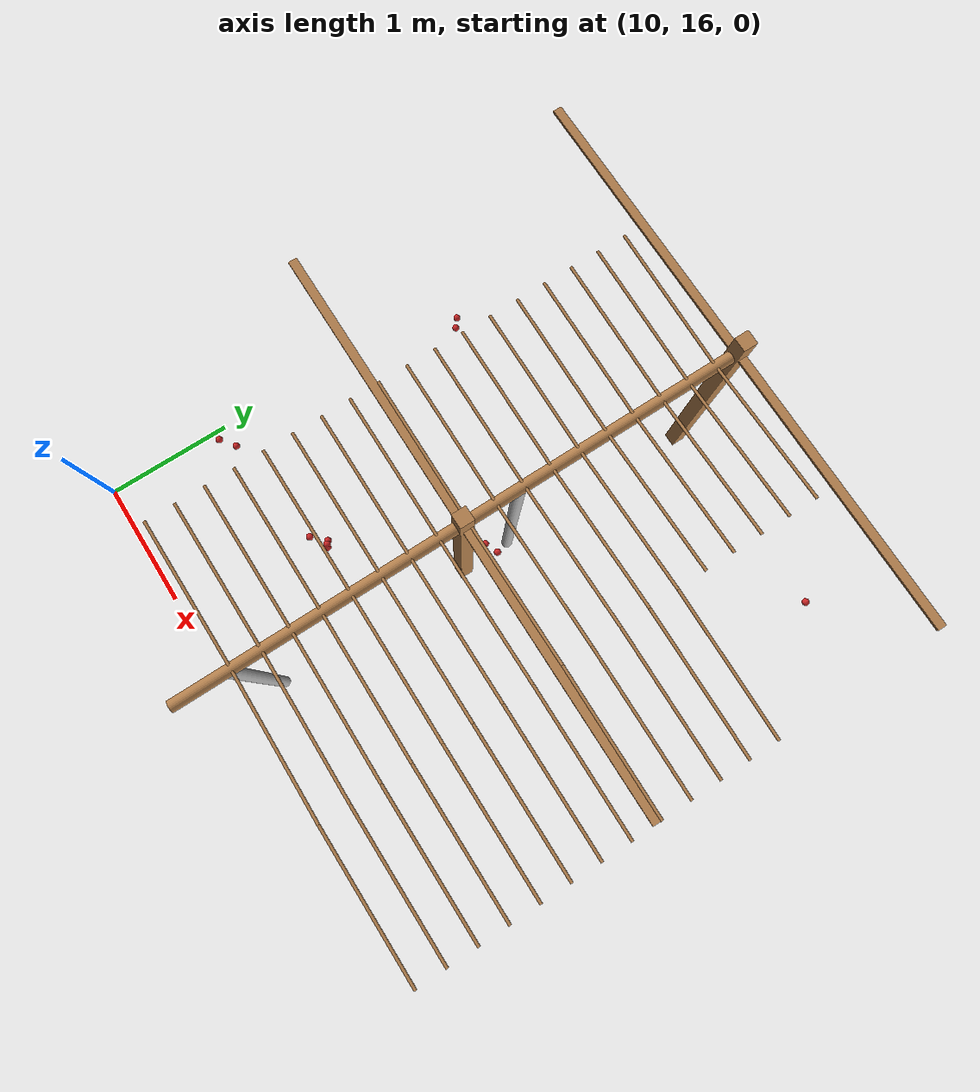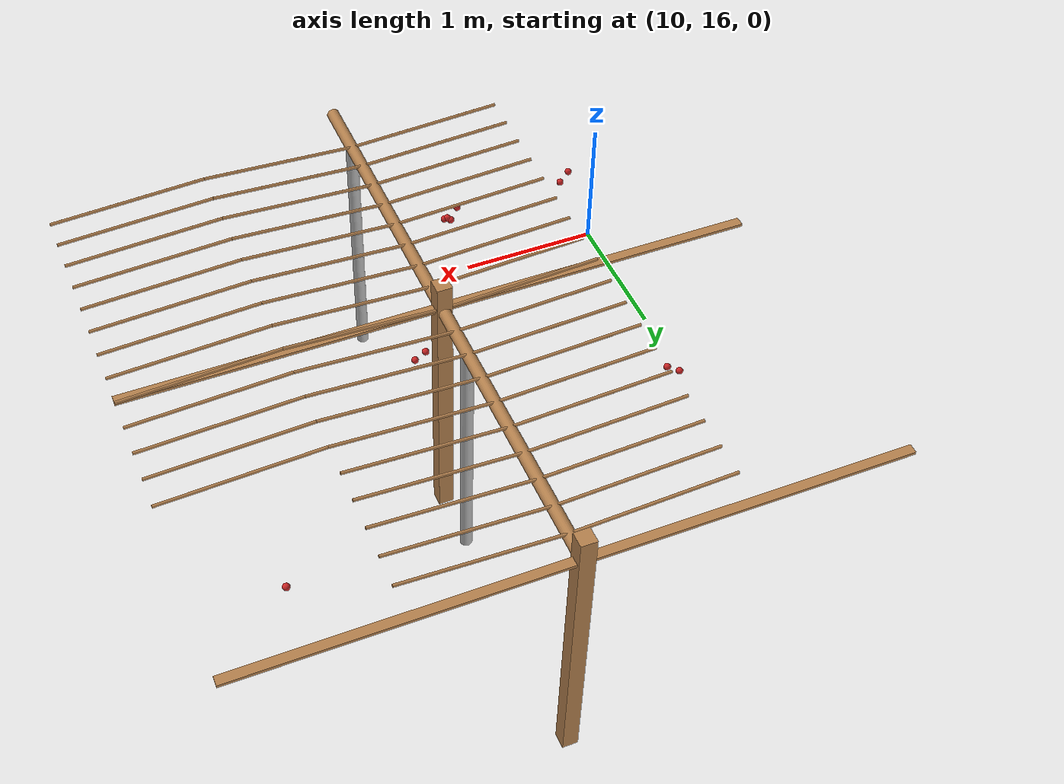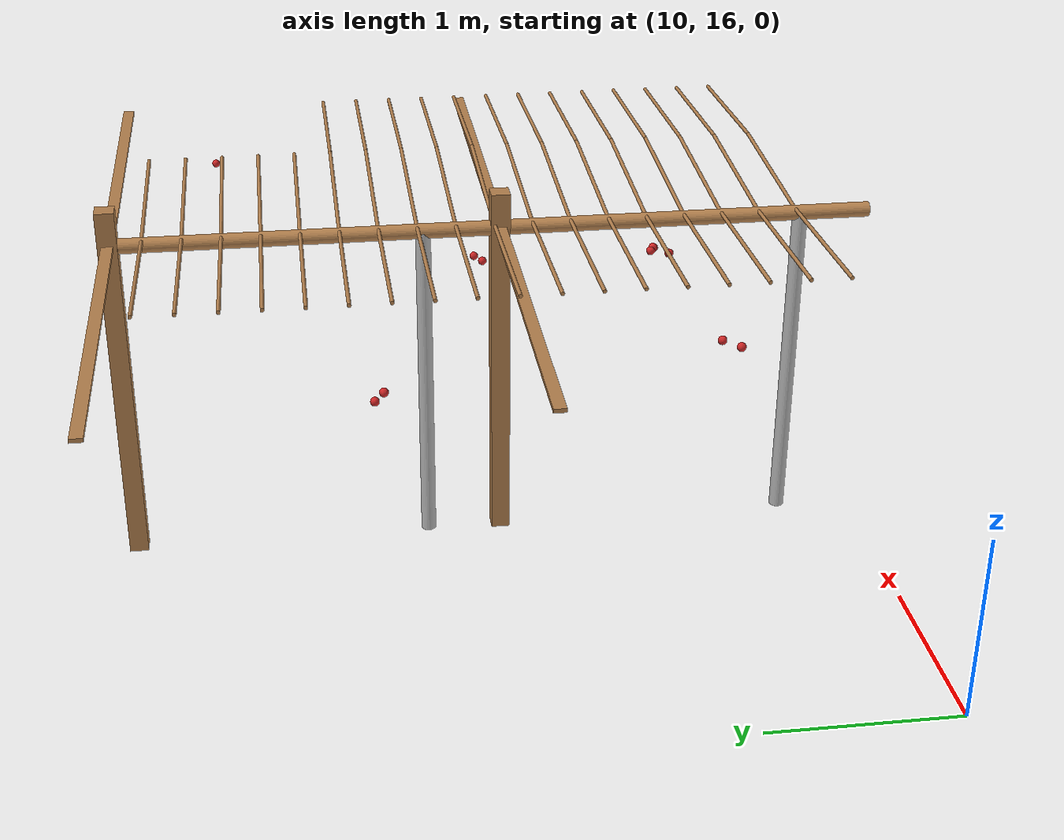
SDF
<sdf version="1.4">
 <model name="pergola">
  <include><name>post_75</name><pose>12.0 18.0 0 0 0 0</pose><uri>model://post</uri></include>
  <include><name>post_76</name><pose>12.0 20.0 0 0 0 0</pose><uri>model://post</uri></include>
  <link name="beam_64">
   <pose>11.0 18.0 1.81 0 0 0</pose>
   <collision name="collision"><geometry><box><size>2.0 0.06 0.02</size></box></geometry></collision>
   <visual name="visual">
    <geometry><box><size>2.0 0.06 0.02</size></box></geometry>
    <material><script><name>Gazebo/Wood</name></script></material>
   </visual>
   <inertial>
    <mass>5</mass>
    <inertia>
     <ixx>0.0016666666666666668</ixx>
     <ixy>0.0</ixy>
     <ixz>0.0</ixz>
     <iyy>1.6681666666666664</iyy>
     <iyz>0.0</iyz>
     <izz>1.6668333333333332</izz>
    </inertia>
   </inertial>
  </link>
  <link name="beam_65">
   <pose>11.0 20.0 1.81 0 0 0</pose>
   <collision name="collision"><geometry><box><size>2.0 0.06 0.02</size></box></geometry></collision>
   <visual name="visual">
    <geometry><box><size>2.0 0.06 0.02</size></box></geometry>
    <material><script><name>Gazebo/Wood</name></script></material>
   </visual>
   <inertial>
    <mass>5</mass>
    <inertia>
     <ixx>0.0016666666666666668</ixx>
     <ixy>0.0</ixy>
     <ixz>0.0</ixz>
     <iyy>1.6681666666666664</iyy>
     <iyz>0.0</iyz>
     <izz>1.6668333333333332</izz>
    </inertia>
   </inertial>
  </link>
  <link name="beam_75">
   <pose>13.0 18.0 1.81 0 0 0</pose>
   <collision name="collision"><geometry><box><size>2.0 0.06 0.02</size></box></geometry></collision>
   <visual name="visual">
    <geometry><box><size>2.0 0.06 0.02</size></box></geometry>
    <material><script><name>Gazebo/Wood</name></script></material>
   </visual>
   <inertial>
    <mass>5</mass>
    <inertia>
     <ixx>0.0016666666666666668</ixx>
     <ixy>0.0</ixy>
     <ixz>0.0</ixz>
     <iyy>1.6681666666666664</iyy>
     <iyz>0.0</iyz>
     <izz>1.6668333333333332</izz>
    </inertia>
   </inertial>
  </link>
  <link name="beam_76">
   <pose>13.0 20.0 1.81 0 0 0</pose>
   <collision name="collision"><geometry><box><size>2.0 0.06 0.02</size></box></geometry></collision>
   <visual name="visual">
    <geometry><box><size>2.0 0.06 0.02</size></box></geometry>
    <material><script><name>Gazebo/Wood</name></script></material>
   </visual>
   <inertial>
    <mass>5</mass>
    <inertia>
     <ixx>0.0016666666666666668</ixx>
     <ixy>0.0</ixy>
     <ixz>0.0</ixz>
     <iyy>1.6681666666666664</iyy>
     <iyz>0.0</iyz>
     <izz>1.6668333333333332</izz>
    </inertia>
   </inertial>
  </link>
  <include><name>tree_68</name><pose>12.0 16.4 0 0 0 0</pose><uri>model://tree_trunk</uri></include>
  <include><name>tree_69</name><pose>12.0 18.4 0 0 0 0</pose><uri>model://tree_trunk</uri></include>
  <link name="baseBranch_68">
   <pose>12.0 17.0 1.8 1.5707963267948966 0 0</pose>
   <collision name="collision">
    <geometry><cylinder><radius>0.04</radius><length>1.94</length></cylinder></geometry>
   </collision>
   <visual name="visual">
    <geometry><cylinder><radius>0.04</radius><length>1.94</length></cylinder></geometry>
    <material><script><name>Gazebo/WoodFloor</name></script></material>
   </visual>
   <inertial>
    <mass>10</mass>
    <inertia>
     <ixx>3.140333333333333</ixx>
     <ixy>0.0</ixy>
     <ixz>0.0</ixz>
     <iyy>3.140333333333333</iyy>
     <iyz>0.0</iyz>
     <izz>0.008</izz>
    </inertia>
   </inertial>
  </link>
  <link name="baseBranch_69">
   <pose>12.0 19.0 1.8 1.5707963267948966 0 0</pose>
   <collision name="collision">
    <geometry><cylinder><radius>0.04</radius><length>1.94</length></cylinder></geometry>
   </collision>
   <visual name="visual">
    <geometry><cylinder><radius>0.04</radius><length>1.94</length></cylinder></geometry>
    <material><script><name>Gazebo/WoodFloor</name></script></material>
   </visual>
   <inertial>
    <mass>10</mass>
    <inertia>
     <ixx>3.140333333333333</ixx>
     <ixy>0.0</ixy>
     <ixz>0.0</ixz>
     <iyy>3.140333333333333</iyy>
     <iyz>0.0</iyz>
     <izz>0.008</izz>
    </inertia>
   </inertial>
  </link>
  <link name="vine_1165">
   <pose>11.5 16.430000000000003 1.85 0 -1.5208379310729538 0</pose>
   <collision name="collision">
    <geometry><cylinder><radius>0.01</radius><length>1.0012492197250393</length></cylinder></geometry>
   </collision>
   <visual name="visual">
    <geometry><cylinder><radius>0.01</radius><length>1.0012492197250393</length></cylinder></geometry>
    <material><script><name>Gazebo/WoodFloor</name></script></material>
   </visual>
   <inertial>
    <mass>5</mass>
    <inertia>
     <ixx>0.41783333333333345</ixx>
     <ixy>0.0</ixy>
     <ixz>0.0</ixz>
     <iyy>0.41783333333333345</iyy>
     <iyz>0.0</iyz>
     <izz>0.00025</izz>
    </inertia>
   </inertial>
  </link>
  <link name="vine_1167">
   <pose>11.5 16.630000000000003 1.85 0 -1.5208379310729538 0</pose>
   <collision name="collision">
    <geometry><cylinder><radius>0.01</radius><length>1.0012492197250393</length></cylinder></geometry>
   </collision>
   <visual name="visual">
    <geometry><cylinder><radius>0.01</radius><length>1.0012492197250393</length></cylinder></geometry>
    <material><script><name>Gazebo/WoodFloor</name></script></material>
   </visual>
   <inertial>
    <mass>5</mass>
    <inertia>
     <ixx>0.41783333333333345</ixx>
     <ixy>0.0</ixy>
     <ixz>0.0</ixz>
     <iyy>0.41783333333333345</iyy>
     <iyz>0.0</iyz>
     <izz>0.00025</izz>
    </inertia>
   </inertial>
  </link>
  <link name="vine_1169">
   <pose>11.5 16.830000000000002 1.85 0 -1.5208379310729538 0</pose>
   <collision name="collision">
    <geometry><cylinder><radius>0.01</radius><length>1.0012492197250393</length></cylinder></geometry>
   </collision>
   <visual name="visual">
    <geometry><cylinder><radius>0.01</radius><length>1.0012492197250393</length></cylinder></geometry>
    <material><script><name>Gazebo/WoodFloor</name></script></material>
   </visual>
   <inertial>
    <mass>5</mass>
    <inertia>
     <ixx>0.41783333333333345</ixx>
     <ixy>0.0</ixy>
     <ixz>0.0</ixz>
     <iyy>0.41783333333333345</iyy>
     <iyz>0.0</iyz>
     <izz>0.00025</izz>
    </inertia>
   </inertial>
  </link>
  <link name="vine_1171">
   <pose>11.5 17.03 1.85 0 -1.5208379310729538 0</pose>
   <collision name="collision">
    <geometry><cylinder><radius>0.01</radius><length>1.0012492197250393</length></cylinder></geometry>
   </collision>
   <visual name="visual">
    <geometry><cylinder><radius>0.01</radius><length>1.0012492197250393</length></cylinder></geometry>
    <material><script><name>Gazebo/WoodFloor</name></script></material>
   </visual>
   <inertial>
    <mass>5</mass>
    <inertia>
     <ixx>0.41783333333333345</ixx>
     <ixy>0.0</ixy>
     <ixz>0.0</ixz>
     <iyy>0.41783333333333345</iyy>
     <iyz>0.0</iyz>
     <izz>0.00025</izz>
    </inertia>
   </inertial>
  </link>
  <link name="vine_1173">
   <pose>11.5 17.23 1.85 0 -1.5208379310729538 0</pose>
   <collision name="collision">
    <geometry><cylinder><radius>0.01</radius><length>1.0012492197250393</length></cylinder></geometry>
   </collision>
   <visual name="visual">
    <geometry><cylinder><radius>0.01</radius><length>1.0012492197250393</length></cylinder></geometry>
    <material><script><name>Gazebo/WoodFloor</name></script></material>
   </visual>
   <inertial>
    <mass>5</mass>
    <inertia>
     <ixx>0.41783333333333345</ixx>
     <ixy>0.0</ixy>
     <ixz>0.0</ixz>
     <iyy>0.41783333333333345</iyy>
     <iyz>0.0</iyz>
     <izz>0.00025</izz>
    </inertia>
   </inertial>
  </link>
  <link name="vine_1175">
   <pose>11.5 17.430000000000003 1.85 0 -1.5208379310729538 0</pose>
   <collision name="collision">
    <geometry><cylinder><radius>0.01</radius><length>1.0012492197250393</length></cylinder></geometry>
   </collision>
   <visual name="visual">
    <geometry><cylinder><radius>0.01</radius><length>1.0012492197250393</length></cylinder></geometry>
    <material><script><name>Gazebo/WoodFloor</name></script></material>
   </visual>
   <inertial>
    <mass>5</mass>
    <inertia>
     <ixx>0.41783333333333345</ixx>
     <ixy>0.0</ixy>
     <ixz>0.0</ixz>
     <iyy>0.41783333333333345</iyy>
     <iyz>0.0</iyz>
     <izz>0.00025</izz>
    </inertia>
   </inertial>
  </link>
  <link name="vine_1177">
   <pose>11.5 17.630000000000003 1.85 0 -1.5208379310729538 0</pose>
   <collision name="collision">
    <geometry><cylinder><radius>0.01</radius><length>1.0012492197250393</length></cylinder></geometry>
   </collision>
   <visual name="visual">
    <geometry><cylinder><radius>0.01</radius><length>1.0012492197250393</length></cylinder></geometry>
    <material><script><name>Gazebo/WoodFloor</name></script></material>
   </visual>
   <inertial>
    <mass>5</mass>
    <inertia>
     <ixx>0.41783333333333345</ixx>
     <ixy>0.0</ixy>
     <ixz>0.0</ixz>
     <iyy>0.41783333333333345</iyy>
     <iyz>0.0</iyz>
     <izz>0.00025</izz>
    </inertia>
   </inertial>
  </link>
  <link name="vine_1179">
   <pose>11.5 17.830000000000002 1.85 0 -1.5208379310729538 0</pose>
   <collision name="collision">
    <geometry><cylinder><radius>0.01</radius><length>1.0012492197250393</length></cylinder></geometry>
   </collision>
   <visual name="visual">
    <geometry><cylinder><radius>0.01</radius><length>1.0012492197250393</length></cylinder></geometry>
    <material><script><name>Gazebo/WoodFloor</name></script></material>
   </visual>
   <inertial>
    <mass>5</mass>
    <inertia>
     <ixx>0.41783333333333345</ixx>
     <ixy>0.0</ixy>
     <ixz>0.0</ixz>
     <iyy>0.41783333333333345</iyy>
     <iyz>0.0</iyz>
     <izz>0.00025</izz>
    </inertia>
   </inertial>
  </link>
  <link name="vine_1181">
   <pose>11.5 18.03 1.85 0 -1.5208379310729538 0</pose>
   <collision name="collision">
    <geometry><cylinder><radius>0.01</radius><length>1.0012492197250393</length></cylinder></geometry>
   </collision>
   <visual name="visual">
    <geometry><cylinder><radius>0.01</radius><length>1.0012492197250393</length></cylinder></geometry>
    <material><script><name>Gazebo/WoodFloor</name></script></material>
   </visual>
   <inertial>
    <mass>5</mass>
    <inertia>
     <ixx>0.41783333333333345</ixx>
     <ixy>0.0</ixy>
     <ixz>0.0</ixz>
     <iyy>0.41783333333333345</iyy>
     <iyz>0.0</iyz>
     <izz>0.00025</izz>
    </inertia>
   </inertial>
  </link>
  <link name="vine_1183">
   <pose>11.5 18.23 1.85 0 -1.5208379310729538 0</pose>
   <collision name="collision">
    <geometry><cylinder><radius>0.01</radius><length>1.0012492197250393</length></cylinder></geometry>
   </collision>
   <visual name="visual">
    <geometry><cylinder><radius>0.01</radius><length>1.0012492197250393</length></cylinder></geometry>
    <material><script><name>Gazebo/WoodFloor</name></script></material>
   </visual>
   <inertial>
    <mass>5</mass>
    <inertia>
     <ixx>0.41783333333333345</ixx>
     <ixy>0.0</ixy>
     <ixz>0.0</ixz>
     <iyy>0.41783333333333345</iyy>
     <iyz>0.0</iyz>
     <izz>0.00025</izz>
    </inertia>
   </inertial>
  </link>
  <link name="vine_1185">
   <pose>11.5 18.430000000000003 1.85 0 -1.5208379310729538 0</pose>
   <collision name="collision">
    <geometry><cylinder><radius>0.01</radius><length>1.0012492197250393</length></cylinder></geometry>
   </collision>
   <visual name="visual">
    <geometry><cylinder><radius>0.01</radius><length>1.0012492197250393</length></cylinder></geometry>
    <material><script><name>Gazebo/WoodFloor</name></script></material>
   </visual>
   <inertial>
    <mass>5</mass>
    <inertia>
     <ixx>0.41783333333333345</ixx>
     <ixy>0.0</ixy>
     <ixz>0.0</ixz>
     <iyy>0.41783333333333345</iyy>
     <iyz>0.0</iyz>
     <izz>0.00025</izz>
    </inertia>
   </inertial>
  </link>
  <link name="vine_1187">
   <pose>11.5 18.630000000000003 1.85 0 -1.5208379310729538 0</pose>
   <collision name="collision">
    <geometry><cylinder><radius>0.01</radius><length>1.0012492197250393</length></cylinder></geometry>
   </collision>
   <visual name="visual">
    <geometry><cylinder><radius>0.01</radius><length>1.0012492197250393</length></cylinder></geometry>
    <material><script><name>Gazebo/WoodFloor</name></script></material>
   </visual>
   <inertial>
    <mass>5</mass>
    <inertia>
     <ixx>0.41783333333333345</ixx>
     <ixy>0.0</ixy>
     <ixz>0.0</ixz>
     <iyy>0.41783333333333345</iyy>
     <iyz>0.0</iyz>
     <izz>0.00025</izz>
    </inertia>
   </inertial>
  </link>
  <link name="vine_1189">
   <pose>11.5 18.830000000000002 1.85 0 -1.5208379310729538 0</pose>
   <collision name="collision">
    <geometry><cylinder><radius>0.01</radius><length>1.0012492197250393</length></cylinder></geometry>
   </collision>
   <visual name="visual">
    <geometry><cylinder><radius>0.01</radius><length>1.0012492197250393</length></cylinder></geometry>
    <material><script><name>Gazebo/WoodFloor</name></script></material>
   </visual>
   <inertial>
    <mass>5</mass>
    <inertia>
     <ixx>0.41783333333333345</ixx>
     <ixy>0.0</ixy>
     <ixz>0.0</ixz>
     <iyy>0.41783333333333345</iyy>
     <iyz>0.0</iyz>
     <izz>0.00025</izz>
    </inertia>
   </inertial>
  </link>
  <link name="vine_1191">
   <pose>11.5 19.03 1.85 0 -1.5208379310729538 0</pose>
   <collision name="collision">
    <geometry><cylinder><radius>0.01</radius><length>1.0012492197250393</length></cylinder></geometry>
   </collision>
   <visual name="visual">
    <geometry><cylinder><radius>0.01</radius><length>1.0012492197250393</length></cylinder></geometry>
    <material><script><name>Gazebo/WoodFloor</name></script></material>
   </visual>
   <inertial>
    <mass>5</mass>
    <inertia>
     <ixx>0.41783333333333345</ixx>
     <ixy>0.0</ixy>
     <ixz>0.0</ixz>
     <iyy>0.41783333333333345</iyy>
     <iyz>0.0</iyz>
     <izz>0.00025</izz>
    </inertia>
   </inertial>
  </link>
  <link name="vine_1193">
   <pose>11.5 19.230000000000004 1.85 0 -1.5208379310729538 0</pose>
   <collision name="collision">
    <geometry><cylinder><radius>0.01</radius><length>1.0012492197250393</length></cylinder></geometry>
   </collision>
   <visual name="visual">
    <geometry><cylinder><radius>0.01</radius><length>1.0012492197250393</length></cylinder></geometry>
    <material><script><name>Gazebo/WoodFloor</name></script></material>
   </visual>
   <inertial>
    <mass>5</mass>
    <inertia>
     <ixx>0.41783333333333345</ixx>
     <ixy>0.0</ixy>
     <ixz>0.0</ixz>
     <iyy>0.41783333333333345</iyy>
     <iyz>0.0</iyz>
     <izz>0.00025</izz>
    </inertia>
   </inertial>
  </link>
  <link name="vine_1195">
   <pose>11.5 19.430000000000003 1.85 0 -1.5208379310729538 0</pose>
   <collision name="collision">
    <geometry><cylinder><radius>0.01</radius><length>1.0012492197250393</length></cylinder></geometry>
   </collision>
   <visual name="visual">
    <geometry><cylinder><radius>0.01</radius><length>1.0012492197250393</length></cylinder></geometry>
    <material><script><name>Gazebo/WoodFloor</name></script></material>
   </visual>
   <inertial>
    <mass>5</mass>
    <inertia>
     <ixx>0.41783333333333345</ixx>
     <ixy>0.0</ixy>
     <ixz>0.0</ixz>
     <iyy>0.41783333333333345</iyy>
     <iyz>0.0</iyz>
     <izz>0.00025</izz>
    </inertia>
   </inertial>
  </link>
  <link name="vine_1197">
   <pose>11.5 19.630000000000003 1.85 0 -1.5208379310729538 0</pose>
   <collision name="collision">
    <geometry><cylinder><radius>0.01</radius><length>1.0012492197250393</length></cylinder></geometry>
   </collision>
   <visual name="visual">
    <geometry><cylinder><radius>0.01</radius><length>1.0012492197250393</length></cylinder></geometry>
    <material><script><name>Gazebo/WoodFloor</name></script></material>
   </visual>
   <inertial>
    <mass>5</mass>
    <inertia>
     <ixx>0.41783333333333345</ixx>
     <ixy>0.0</ixy>
     <ixz>0.0</ixz>
     <iyy>0.41783333333333345</iyy>
     <iyz>0.0</iyz>
     <izz>0.00025</izz>
    </inertia>
   </inertial>
  </link>
  <link name="vine_1199">
   <pose>11.5 19.830000000000002 1.85 0 -1.5208379310729538 0</pose>
   <collision name="collision">
    <geometry><cylinder><radius>0.01</radius><length>1.0012492197250393</length></cylinder></geometry>
   </collision>
   <visual name="visual">
    <geometry><cylinder><radius>0.01</radius><length>1.0012492197250393</length></cylinder></geometry>
    <material><script><name>Gazebo/WoodFloor</name></script></material>
   </visual>
   <inertial>
    <mass>5</mass>
    <inertia>
     <ixx>0.41783333333333345</ixx>
     <ixy>0.0</ixy>
     <ixz>0.0</ixz>
     <iyy>0.41783333333333345</iyy>
     <iyz>0.0</iyz>
     <izz>0.00025</izz>
    </inertia>
   </inertial>
  </link>
  <link name="vine_1364">
   <pose>12.5 16.430000000000003 1.85 0 1.5208379310729538 0</pose>
   <collision name="collision">
    <geometry><cylinder><radius>0.01</radius><length>1.0012492197250393</length></cylinder></geometry>
   </collision>
   <visual name="visual">
    <geometry><cylinder><radius>0.01</radius><length>1.0012492197250393</length></cylinder></geometry>
    <material><script><name>Gazebo/WoodFloor</name></script></material>
   </visual>
   <inertial>
    <mass>5</mass>
    <inertia>
     <ixx>0.41783333333333345</ixx>
     <ixy>0.0</ixy>
     <ixz>0.0</ixz>
     <iyy>0.41783333333333345</iyy>
     <iyz>0.0</iyz>
     <izz>0.00025</izz>
    </inertia>
   </inertial>
  </link>
  <link name="vine_1365">
   <pose>13.5 16.430000000000003 1.85 0 -1.5208379310729538 0</pose>
   <collision name="collision">
    <geometry><cylinder><radius>0.01</radius><length>1.0012492197250393</length></cylinder></geometry>
   </collision>
   <visual name="visual">
    <geometry><cylinder><radius>0.01</radius><length>1.0012492197250393</length></cylinder></geometry>
    <material><script><name>Gazebo/WoodFloor</name></script></material>
   </visual>
   <inertial>
    <mass>5</mass>
    <inertia>
     <ixx>0.41783333333333345</ixx>
     <ixy>0.0</ixy>
     <ixz>0.0</ixz>
     <iyy>0.41783333333333345</iyy>
     <iyz>0.0</iyz>
     <izz>0.00025</izz>
    </inertia>
   </inertial>
  </link>
  <link name="vine_1366">
   <pose>12.5 16.630000000000003 1.85 0 1.5208379310729538 0</pose>
   <collision name="collision">
    <geometry><cylinder><radius>0.01</radius><length>1.0012492197250393</length></cylinder></geometry>
   </collision>
   <visual name="visual">
    <geometry><cylinder><radius>0.01</radius><length>1.0012492197250393</length></cylinder></geometry>
    <material><script><name>Gazebo/WoodFloor</name></script></material>
   </visual>
   <inertial>
    <mass>5</mass>
    <inertia>
     <ixx>0.41783333333333345</ixx>
     <ixy>0.0</ixy>
     <ixz>0.0</ixz>
     <iyy>0.41783333333333345</iyy>
     <iyz>0.0</iyz>
     <izz>0.00025</izz>
    </inertia>
   </inertial>
  </link>
  <link name="vine_1367">
   <pose>13.5 16.630000000000003 1.85 0 -1.5208379310729538 0</pose>
   <collision name="collision">
    <geometry><cylinder><radius>0.01</radius><length>1.0012492197250393</length></cylinder></geometry>
   </collision>
   <visual name="visual">
    <geometry><cylinder><radius>0.01</radius><length>1.0012492197250393</length></cylinder></geometry>
    <material><script><name>Gazebo/WoodFloor</name></script></material>
   </visual>
   <inertial>
    <mass>5</mass>
    <inertia>
     <ixx>0.41783333333333345</ixx>
     <ixy>0.0</ixy>
     <ixz>0.0</ixz>
     <iyy>0.41783333333333345</iyy>
     <iyz>0.0</iyz>
     <izz>0.00025</izz>
    </inertia>
   </inertial>
  </link>
  <link name="vine_1368">
   <pose>12.5 16.830000000000002 1.85 0 1.5208379310729538 0</pose>
   <collision name="collision">
    <geometry><cylinder><radius>0.01</radius><length>1.0012492197250393</length></cylinder></geometry>
   </collision>
   <visual name="visual">
    <geometry><cylinder><radius>0.01</radius><length>1.0012492197250393</length></cylinder></geometry>
    <material><script><name>Gazebo/WoodFloor</name></script></material>
   </visual>
   <inertial>
    <mass>5</mass>
    <inertia>
     <ixx>0.41783333333333345</ixx>
     <ixy>0.0</ixy>
     <ixz>0.0</ixz>
     <iyy>0.41783333333333345</iyy>
     <iyz>0.0</iyz>
     <izz>0.00025</izz>
    </inertia>
   </inertial>
  </link>
  <link name="vine_1369">
   <pose>13.5 16.830000000000002 1.85 0 -1.5208379310729538 0</pose>
   <collision name="collision">
    <geometry><cylinder><radius>0.01</radius><length>1.0012492197250393</length></cylinder></geometry>
   </collision>
   <visual name="visual">
    <geometry><cylinder><radius>0.01</radius><length>1.0012492197250393</length></cylinder></geometry>
    <material><script><name>Gazebo/WoodFloor</name></script></material>
   </visual>
   <inertial>
    <mass>5</mass>
    <inertia>
     <ixx>0.41783333333333345</ixx>
     <ixy>0.0</ixy>
     <ixz>0.0</ixz>
     <iyy>0.41783333333333345</iyy>
     <iyz>0.0</iyz>
     <izz>0.00025</izz>
    </inertia>
   </inertial>
  </link>
  <link name="vine_1370">
   <pose>12.5 17.03 1.85 0 1.5208379310729538 0</pose>
   <collision name="collision">
    <geometry><cylinder><radius>0.01</radius><length>1.0012492197250393</length></cylinder></geometry>
   </collision>
   <visual name="visual">
    <geometry><cylinder><radius>0.01</radius><length>1.0012492197250393</length></cylinder></geometry>
    <material><script><name>Gazebo/WoodFloor</name></script></material>
   </visual>
   <inertial>
    <mass>5</mass>
    <inertia>
     <ixx>0.41783333333333345</ixx>
     <ixy>0.0</ixy>
     <ixz>0.0</ixz>
     <iyy>0.41783333333333345</iyy>
     <iyz>0.0</iyz>
     <izz>0.00025</izz>
    </inertia>
   </inertial>
  </link>
  <link name="vine_1371">
   <pose>13.5 17.03 1.85 0 -1.5208379310729538 0</pose>
   <collision name="collision">
    <geometry><cylinder><radius>0.01</radius><length>1.0012492197250393</length></cylinder></geometry>
   </collision>
   <visual name="visual">
    <geometry><cylinder><radius>0.01</radius><length>1.0012492197250393</length></cylinder></geometry>
    <material><script><name>Gazebo/WoodFloor</name></script></material>
   </visual>
   <inertial>
    <mass>5</mass>
    <inertia>
     <ixx>0.41783333333333345</ixx>
     <ixy>0.0</ixy>
     <ixz>0.0</ixz>
     <iyy>0.41783333333333345</iyy>
     <iyz>0.0</iyz>
     <izz>0.00025</izz>
    </inertia>
   </inertial>
  </link>
  <link name="vine_1372">
   <pose>12.5 17.23 1.85 0 1.5208379310729538 0</pose>
   <collision name="collision">
    <geometry><cylinder><radius>0.01</radius><length>1.0012492197250393</length></cylinder></geometry>
   </collision>
   <visual name="visual">
    <geometry><cylinder><radius>0.01</radius><length>1.0012492197250393</length></cylinder></geometry>
    <material><script><name>Gazebo/WoodFloor</name></script></material>
   </visual>
   <inertial>
    <mass>5</mass>
    <inertia>
     <ixx>0.41783333333333345</ixx>
     <ixy>0.0</ixy>
     <ixz>0.0</ixz>
     <iyy>0.41783333333333345</iyy>
     <iyz>0.0</iyz>
     <izz>0.00025</izz>
    </inertia>
   </inertial>
  </link>
  <link name="vine_1373">
   <pose>13.5 17.23 1.85 0 -1.5208379310729538 0</pose>
   <collision name="collision">
    <geometry><cylinder><radius>0.01</radius><length>1.0012492197250393</length></cylinder></geometry>
   </collision>
   <visual name="visual">
    <geometry><cylinder><radius>0.01</radius><length>1.0012492197250393</length></cylinder></geometry>
    <material><script><name>Gazebo/WoodFloor</name></script></material>
   </visual>
   <inertial>
    <mass>5</mass>
    <inertia>
     <ixx>0.41783333333333345</ixx>
     <ixy>0.0</ixy>
     <ixz>0.0</ixz>
     <iyy>0.41783333333333345</iyy>
     <iyz>0.0</iyz>
     <izz>0.00025</izz>
    </inertia>
   </inertial>
  </link>
  <link name="vine_1374">
   <pose>12.5 17.430000000000003 1.85 0 1.5208379310729538 0</pose>
   <collision name="collision">
    <geometry><cylinder><radius>0.01</radius><length>1.0012492197250393</length></cylinder></geometry>
   </collision>
   <visual name="visual">
    <geometry><cylinder><radius>0.01</radius><length>1.0012492197250393</length></cylinder></geometry>
    <material><script><name>Gazebo/WoodFloor</name></script></material>
   </visual>
   <inertial>
    <mass>5</mass>
    <inertia>
     <ixx>0.41783333333333345</ixx>
     <ixy>0.0</ixy>
     <ixz>0.0</ixz>
     <iyy>0.41783333333333345</iyy>
     <iyz>0.0</iyz>
     <izz>0.00025</izz>
    </inertia>
   </inertial>
  </link>
  <link name="vine_1375">
   <pose>13.5 17.430000000000003 1.85 0 -1.5208379310729538 0</pose>
   <collision name="collision">
    <geometry><cylinder><radius>0.01</radius><length>1.0012492197250393</length></cylinder></geometry>
   </collision>
   <visual name="visual">
    <geometry><cylinder><radius>0.01</radius><length>1.0012492197250393</length></cylinder></geometry>
    <material><script><name>Gazebo/WoodFloor</name></script></material>
   </visual>
   <inertial>
    <mass>5</mass>
    <inertia>
     <ixx>0.41783333333333345</ixx>
     <ixy>0.0</ixy>
     <ixz>0.0</ixz>
     <iyy>0.41783333333333345</iyy>
     <iyz>0.0</iyz>
     <izz>0.00025</izz>
    </inertia>
   </inertial>
  </link>
  <link name="vine_1376">
   <pose>12.5 17.630000000000003 1.85 0 1.5208379310729538 0</pose>
   <collision name="collision">
    <geometry><cylinder><radius>0.01</radius><length>1.0012492197250393</length></cylinder></geometry>
   </collision>
   <visual name="visual">
    <geometry><cylinder><radius>0.01</radius><length>1.0012492197250393</length></cylinder></geometry>
    <material><script><name>Gazebo/WoodFloor</name></script></material>
   </visual>
   <inertial>
    <mass>5</mass>
    <inertia>
     <ixx>0.41783333333333345</ixx>
     <ixy>0.0</ixy>
     <ixz>0.0</ixz>
     <iyy>0.41783333333333345</iyy>
     <iyz>0.0</iyz>
     <izz>0.00025</izz>
    </inertia>
   </inertial>
  </link>
  <link name="vine_1377">
   <pose>13.5 17.630000000000003 1.85 0 -1.5208379310729538 0</pose>
   <collision name="collision">
    <geometry><cylinder><radius>0.01</radius><length>1.0012492197250393</length></cylinder></geometry>
   </collision>
   <visual name="visual">
    <geometry><cylinder><radius>0.01</radius><length>1.0012492197250393</length></cylinder></geometry>
    <material><script><name>Gazebo/WoodFloor</name></script></material>
   </visual>
   <inertial>
    <mass>5</mass>
    <inertia>
     <ixx>0.41783333333333345</ixx>
     <ixy>0.0</ixy>
     <ixz>0.0</ixz>
     <iyy>0.41783333333333345</iyy>
     <iyz>0.0</iyz>
     <izz>0.00025</izz>
    </inertia>
   </inertial>
  </link>
  <link name="vine_1378">
   <pose>12.5 17.830000000000002 1.85 0 1.5208379310729538 0</pose>
   <collision name="collision">
    <geometry><cylinder><radius>0.01</radius><length>1.0012492197250393</length></cylinder></geometry>
   </collision>
   <visual name="visual">
    <geometry><cylinder><radius>0.01</radius><length>1.0012492197250393</length></cylinder></geometry>
    <material><script><name>Gazebo/WoodFloor</name></script></material>
   </visual>
   <inertial>
    <mass>5</mass>
    <inertia>
     <ixx>0.41783333333333345</ixx>
     <ixy>0.0</ixy>
     <ixz>0.0</ixz>
     <iyy>0.41783333333333345</iyy>
     <iyz>0.0</iyz>
     <izz>0.00025</izz>
    </inertia>
   </inertial>
  </link>
  <link name="vine_1379">
   <pose>13.5 17.830000000000002 1.85 0 -1.5208379310729538 0</pose>
   <collision name="collision">
    <geometry><cylinder><radius>0.01</radius><length>1.0012492197250393</length></cylinder></geometry>
   </collision>
   <visual name="visual">
    <geometry><cylinder><radius>0.01</radius><length>1.0012492197250393</length></cylinder></geometry>
    <material><script><name>Gazebo/WoodFloor</name></script></material>
   </visual>
   <inertial>
    <mass>5</mass>
    <inertia>
     <ixx>0.41783333333333345</ixx>
     <ixy>0.0</ixy>
     <ixz>0.0</ixz>
     <iyy>0.41783333333333345</iyy>
     <iyz>0.0</iyz>
     <izz>0.00025</izz>
    </inertia>
   </inertial>
  </link>
  <link name="vine_1380">
   <pose>12.5 18.03 1.85 0 1.5208379310729538 0</pose>
   <collision name="collision">
    <geometry><cylinder><radius>0.01</radius><length>1.0012492197250393</length></cylinder></geometry>
   </collision>
   <visual name="visual">
    <geometry><cylinder><radius>0.01</radius><length>1.0012492197250393</length></cylinder></geometry>
    <material><script><name>Gazebo/WoodFloor</name></script></material>
   </visual>
   <inertial>
    <mass>5</mass>
    <inertia>
     <ixx>0.41783333333333345</ixx>
     <ixy>0.0</ixy>
     <ixz>0.0</ixz>
     <iyy>0.41783333333333345</iyy>
     <iyz>0.0</iyz>
     <izz>0.00025</izz>
    </inertia>
   </inertial>
  </link>
  <link name="vine_1381">
   <pose>13.5 18.03 1.85 0 -1.5208379310729538 0</pose>
   <collision name="collision">
    <geometry><cylinder><radius>0.01</radius><length>1.0012492197250393</length></cylinder></geometry>
   </collision>
   <visual name="visual">
    <geometry><cylinder><radius>0.01</radius><length>1.0012492197250393</length></cylinder></geometry>
    <material><script><name>Gazebo/WoodFloor</name></script></material>
   </visual>
   <inertial>
    <mass>5</mass>
    <inertia>
     <ixx>0.41783333333333345</ixx>
     <ixy>0.0</ixy>
     <ixz>0.0</ixz>
     <iyy>0.41783333333333345</iyy>
     <iyz>0.0</iyz>
     <izz>0.00025</izz>
    </inertia>
   </inertial>
  </link>
  <link name="vine_1382">
   <pose>12.5 18.23 1.85 0 1.5208379310729538 0</pose>
   <collision name="collision">
    <geometry><cylinder><radius>0.01</radius><length>1.0012492197250393</length></cylinder></geometry>
   </collision>
   <visual name="visual">
    <geometry><cylinder><radius>0.01</radius><length>1.0012492197250393</length></cylinder></geometry>
    <material><script><name>Gazebo/WoodFloor</name></script></material>
   </visual>
   <inertial>
    <mass>5</mass>
    <inertia>
     <ixx>0.41783333333333345</ixx>
     <ixy>0.0</ixy>
     <ixz>0.0</ixz>
     <iyy>0.41783333333333345</iyy>
     <iyz>0.0</iyz>
     <izz>0.00025</izz>
    </inertia>
   </inertial>
  </link>
  <link name="vine_1383">
   <pose>13.5 18.23 1.85 0 -1.5208379310729538 0</pose>
   <collision name="collision">
    <geometry><cylinder><radius>0.01</radius><length>1.0012492197250393</length></cylinder></geometry>
   </collision>
   <visual name="visual">
    <geometry><cylinder><radius>0.01</radius><length>1.0012492197250393</length></cylinder></geometry>
    <material><script><name>Gazebo/WoodFloor</name></script></material>
   </visual>
   <inertial>
    <mass>5</mass>
    <inertia>
     <ixx>0.41783333333333345</ixx>
     <ixy>0.0</ixy>
     <ixz>0.0</ixz>
     <iyy>0.41783333333333345</iyy>
     <iyz>0.0</iyz>
     <izz>0.00025</izz>
    </inertia>
   </inertial>
  </link>
  <link name="vine_1384">
   <pose>12.5 18.430000000000003 1.85 0 1.5208379310729538 0</pose>
   <collision name="collision">
    <geometry><cylinder><radius>0.01</radius><length>1.0012492197250393</length></cylinder></geometry>
   </collision>
   <visual name="visual">
    <geometry><cylinder><radius>0.01</radius><length>1.0012492197250393</length></cylinder></geometry>
    <material><script><name>Gazebo/WoodFloor</name></script></material>
   </visual>
   <inertial>
    <mass>5</mass>
    <inertia>
     <ixx>0.41783333333333345</ixx>
     <ixy>0.0</ixy>
     <ixz>0.0</ixz>
     <iyy>0.41783333333333345</iyy>
     <iyz>0.0</iyz>
     <izz>0.00025</izz>
    </inertia>
   </inertial>
  </link>
  <link name="vine_1385">
   <pose>13.5 18.430000000000003 1.85 0 -1.5208379310729538 0</pose>
   <collision name="collision">
    <geometry><cylinder><radius>0.01</radius><length>1.0012492197250393</length></cylinder></geometry>
   </collision>
   <visual name="visual">
    <geometry><cylinder><radius>0.01</radius><length>1.0012492197250393</length></cylinder></geometry>
    <material><script><name>Gazebo/WoodFloor</name></script></material>
   </visual>
   <inertial>
    <mass>5</mass>
    <inertia>
     <ixx>0.41783333333333345</ixx>
     <ixy>0.0</ixy>
     <ixz>0.0</ixz>
     <iyy>0.41783333333333345</iyy>
     <iyz>0.0</iyz>
     <izz>0.00025</izz>
    </inertia>
   </inertial>
  </link>
  <link name="vine_1386">
   <pose>12.5 18.630000000000003 1.85 0 1.5208379310729538 0</pose>
   <collision name="collision">
    <geometry><cylinder><radius>0.01</radius><length>1.0012492197250393</length></cylinder></geometry>
   </collision>
   <visual name="visual">
    <geometry><cylinder><radius>0.01</radius><length>1.0012492197250393</length></cylinder></geometry>
    <material><script><name>Gazebo/WoodFloor</name></script></material>
   </visual>
   <inertial>
    <mass>5</mass>
    <inertia>
     <ixx>0.41783333333333345</ixx>
     <ixy>0.0</ixy>
     <ixz>0.0</ixz>
     <iyy>0.41783333333333345</iyy>
     <iyz>0.0</iyz>
     <izz>0.00025</izz>
    </inertia>
   </inertial>
  </link>
  <link name="vine_1387">
   <pose>13.5 18.630000000000003 1.85 0 -1.5208379310729538 0</pose>
   <collision name="collision">
    <geometry><cylinder><radius>0.01</radius><length>1.0012492197250393</length></cylinder></geometry>
   </collision>
   <visual name="visual">
    <geometry><cylinder><radius>0.01</radius><length>1.0012492197250393</length></cylinder></geometry>
    <material><script><name>Gazebo/WoodFloor</name></script></material>
   </visual>
   <inertial>
    <mass>5</mass>
    <inertia>
     <ixx>0.41783333333333345</ixx>
     <ixy>0.0</ixy>
     <ixz>0.0</ixz>
     <iyy>0.41783333333333345</iyy>
     <iyz>0.0</iyz>
     <izz>0.00025</izz>
    </inertia>
   </inertial>
  </link>
  <link name="vine_1388">
   <pose>12.5 18.830000000000002 1.85 0 1.5208379310729538 0</pose>
   <collision name="collision">
    <geometry><cylinder><radius>0.01</radius><length>1.0012492197250393</length></cylinder></geometry>
   </collision>
   <visual name="visual">
    <geometry><cylinder><radius>0.01</radius><length>1.0012492197250393</length></cylinder></geometry>
    <material><script><name>Gazebo/WoodFloor</name></script></material>
   </visual>
   <inertial>
    <mass>5</mass>
    <inertia>
     <ixx>0.41783333333333345</ixx>
     <ixy>0.0</ixy>
     <ixz>0.0</ixz>
     <iyy>0.41783333333333345</iyy>
     <iyz>0.0</iyz>
     <izz>0.00025</izz>
    </inertia>
   </inertial>
  </link>
  <link name="vine_1389">
   <pose>13.5 18.830000000000002 1.85 0 -1.5208379310729538 0</pose>
   <collision name="collision">
    <geometry><cylinder><radius>0.01</radius><length>1.0012492197250393</length></cylinder></geometry>
   </collision>
   <visual name="visual">
    <geometry><cylinder><radius>0.01</radius><length>1.0012492197250393</length></cylinder></geometry>
    <material><script><name>Gazebo/WoodFloor</name></script></material>
   </visual>
   <inertial>
    <mass>5</mass>
    <inertia>
     <ixx>0.41783333333333345</ixx>
     <ixy>0.0</ixy>
     <ixz>0.0</ixz>
     <iyy>0.41783333333333345</iyy>
     <iyz>0.0</iyz>
     <izz>0.00025</izz>
    </inertia>
   </inertial>
  </link>
  <link name="vine_1390">
   <pose>12.5 19.03 1.85 0 1.5208379310729538 0</pose>
   <collision name="collision">
    <geometry><cylinder><radius>0.01</radius><length>1.0012492197250393</length></cylinder></geometry>
   </collision>
   <visual name="visual">
    <geometry><cylinder><radius>0.01</radius><length>1.0012492197250393</length></cylinder></geometry>
    <material><script><name>Gazebo/WoodFloor</name></script></material>
   </visual>
   <inertial>
    <mass>5</mass>
    <inertia>
     <ixx>0.41783333333333345</ixx>
     <ixy>0.0</ixy>
     <ixz>0.0</ixz>
     <iyy>0.41783333333333345</iyy>
     <iyz>0.0</iyz>
     <izz>0.00025</izz>
    </inertia>
   </inertial>
  </link>
  <link name="vine_1392">
   <pose>12.5 19.230000000000004 1.85 0 1.5208379310729538 0</pose>
   <collision name="collision">
    <geometry><cylinder><radius>0.01</radius><length>1.0012492197250393</length></cylinder></geometry>
   </collision>
   <visual name="visual">
    <geometry><cylinder><radius>0.01</radius><length>1.0012492197250393</length></cylinder></geometry>
    <material><script><name>Gazebo/WoodFloor</name></script></material>
   </visual>
   <inertial>
    <mass>5</mass>
    <inertia>
     <ixx>0.41783333333333345</ixx>
     <ixy>0.0</ixy>
     <ixz>0.0</ixz>
     <iyy>0.41783333333333345</iyy>
     <iyz>0.0</iyz>
     <izz>0.00025</izz>
    </inertia>
   </inertial>
  </link>
  <link name="vine_1394">
   <pose>12.5 19.430000000000003 1.85 0 1.5208379310729538 0</pose>
   <collision name="collision">
    <geometry><cylinder><radius>0.01</radius><length>1.0012492197250393</length></cylinder></geometry>
   </collision>
   <visual name="visual">
    <geometry><cylinder><radius>0.01</radius><length>1.0012492197250393</length></cylinder></geometry>
    <material><script><name>Gazebo/WoodFloor</name></script></material>
   </visual>
   <inertial>
    <mass>5</mass>
    <inertia>
     <ixx>0.41783333333333345</ixx>
     <ixy>0.0</ixy>
     <ixz>0.0</ixz>
     <iyy>0.41783333333333345</iyy>
     <iyz>0.0</iyz>
     <izz>0.00025</izz>
    </inertia>
   </inertial>
  </link>
  <link name="vine_1396">
   <pose>12.5 19.630000000000003 1.85 0 1.5208379310729538 0</pose>
   <collision name="collision">
    <geometry><cylinder><radius>0.01</radius><length>1.0012492197250393</length></cylinder></geometry>
   </collision>
   <visual name="visual">
    <geometry><cylinder><radius>0.01</radius><length>1.0012492197250393</length></cylinder></geometry>
    <material><script><name>Gazebo/WoodFloor</name></script></material>
   </visual>
   <inertial>
    <mass>5</mass>
    <inertia>
     <ixx>0.41783333333333345</ixx>
     <ixy>0.0</ixy>
     <ixz>0.0</ixz>
     <iyy>0.41783333333333345</iyy>
     <iyz>0.0</iyz>
     <izz>0.00025</izz>
    </inertia>
   </inertial>
  </link>
  <link name="vine_1398">
   <pose>12.5 19.830000000000002 1.85 0 1.5208379310729538 0</pose>
   <collision name="collision">
    <geometry><cylinder><radius>0.01</radius><length>1.0012492197250393</length></cylinder></geometry>
   </collision>
   <visual name="visual">
    <geometry><cylinder><radius>0.01</radius><length>1.0012492197250393</length></cylinder></geometry>
    <material><script><name>Gazebo/WoodFloor</name></script></material>
   </visual>
   <inertial>
    <mass>5</mass>
    <inertia>
     <ixx>0.41783333333333345</ixx>
     <ixy>0.0</ixy>
     <ixz>0.0</ixz>
     <iyy>0.41783333333333345</iyy>
     <iyz>0.0</iyz>
     <izz>0.00025</izz>
    </inertia>
   </inertial>
  </link>
  <link name="fruit_62">
   <pose>10.725410632847522 17.028956960146342 1.6830762694816568 0 0 0</pose>
   <collision name="fruit_collision_62"><geometry><sphere><radius>0.022</radius></sphere></geometry></collision>
   <visual name="visual">
    <geometry><sphere><radius>0.022</radius></sphere></geometry>
    <material><script><name>Gazebo/Red</name></script></material>
   </visual>
   <inertial>
    <mass>0.05</mass>
    <inertia>
     <ixx>9.679999999999999e-06</ixx>
     <ixy>0.0</ixy>
     <ixz>0.0</ixz>
     <iyy>9.679999999999999e-06</iyy>
     <iyz>0.0</iyz>
     <izz>9.679999999999999e-06</izz>
    </inertia>
   </inertial>
   <sensor name="fruit_contact_62" type="contact">
    <contact><collision>fruit_collision_62</collision></contact>
   </sensor>
  </link>
  <link name="fruit_159">
   <pose>11.578227917719502 17.19538302919177 1.7941775271091793 0 0 0</pose>
   <collision name="fruit_collision_159"><geometry><sphere><radius>0.022</radius></sphere></geometry></collision>
   <visual name="visual">
    <geometry><sphere><radius>0.022</radius></sphere></geometry>
    <material><script><name>Gazebo/Red</name></script></material>
   </visual>
   <inertial>
    <mass>0.05</mass>
    <inertia>
     <ixx>9.679999999999999e-06</ixx>
     <ixy>0.0</ixy>
     <ixz>0.0</ixz>
     <iyy>9.679999999999999e-06</iyy>
     <iyz>0.0</iyz>
     <izz>9.679999999999999e-06</izz>
    </inertia>
   </inertial>
   <sensor name="fruit_contact_159" type="contact">
    <contact><collision>fruit_collision_159</collision></contact>
   </sensor>
  </link>
  <link name="fruit_335">
   <pose>13.471077699173401 19.482799405060277 1.6616711777216662 0 0 0</pose>
   <collision name="fruit_collision_335"><geometry><sphere><radius>0.022</radius></sphere></geometry></collision>
   <visual name="visual">
    <geometry><sphere><radius>0.022</radius></sphere></geometry>
    <material><script><name>Gazebo/Red</name></script></material>
   </visual>
   <inertial>
    <mass>0.05</mass>
    <inertia>
     <ixx>9.679999999999999e-06</ixx>
     <ixy>0.0</ixy>
     <ixz>0.0</ixz>
     <iyy>9.679999999999999e-06</iyy>
     <iyz>0.0</iyz>
     <izz>9.679999999999999e-06</izz>
    </inertia>
   </inertial>
   <sensor name="fruit_contact_335" type="contact">
    <contact><collision>fruit_collision_335</collision></contact>
   </sensor>
  </link>
  <link name="fruit_343">
   <pose>12.137329316520969 18.075468127638754 1.5528959030166234 0 0 0</pose>
   <collision name="fruit_collision_343"><geometry><sphere><radius>0.022</radius></sphere></geometry></collision>
   <visual name="visual">
    <geometry><sphere><radius>0.022</radius></sphere></geometry>
    <material><script><name>Gazebo/Red</name></script></material>
   </visual>
   <inertial>
    <mass>0.05</mass>
    <inertia>
     <ixx>9.679999999999999e-06</ixx>
     <ixy>0.0</ixy>
     <ixz>0.0</ixz>
     <iyy>9.679999999999999e-06</iyy>
     <iyz>0.0</iyz>
     <izz>9.679999999999999e-06</izz>
    </inertia>
   </inertial>
   <sensor name="fruit_contact_343" type="contact">
    <contact><collision>fruit_collision_343</collision></contact>
   </sensor>
  </link>
  <link name="fruit_457">
   <pose>11.652033287677037 17.273489279774118 1.7794094754279766 0 0 0</pose>
   <collision name="fruit_collision_457"><geometry><sphere><radius>0.022</radius></sphere></geometry></collision>
   <visual name="visual">
    <geometry><sphere><radius>0.022</radius></sphere></geometry>
    <material><script><name>Gazebo/Red</name></script></material>
   </visual>
   <inertial>
    <mass>0.05</mass>
    <inertia>
     <ixx>9.679999999999999e-06</ixx>
     <ixy>0.0</ixy>
     <ixz>0.0</ixz>
     <iyy>9.679999999999999e-06</iyy>
     <iyz>0.0</iyz>
     <izz>9.679999999999999e-06</izz>
    </inertia>
   </inertial>
   <sensor name="fruit_contact_457" type="contact">
    <contact><collision>fruit_collision_457</collision></contact>
   </sensor>
  </link>
  <link name="fruit_462">
   <pose>10.815002311924093 17.097845607489173 1.6777224718875345 0 0 0</pose>
   <collision name="fruit_collision_462"><geometry><sphere><radius>0.022</radius></sphere></geometry></collision>
   <visual name="visual">
    <geometry><sphere><radius>0.022</radius></sphere></geometry>
    <material><script><name>Gazebo/Red</name></script></material>
   </visual>
   <inertial>
    <mass>0.05</mass>
    <inertia>
     <ixx>9.679999999999999e-06</ixx>
     <ixy>0.0</ixy>
     <ixz>0.0</ixz>
     <iyy>9.679999999999999e-06</iyy>
     <iyz>0.0</iyz>
     <izz>9.679999999999999e-06</izz>
    </inertia>
   </inertial>
   <sensor name="fruit_contact_462" type="contact">
    <contact><collision>fruit_collision_462</collision></contact>
   </sensor>
  </link>
  <link name="fruit_466">
   <pose>11.669462708355153 17.259459532113144 1.7896750539845931 0 0 0</pose>
   <collision name="fruit_collision_466"><geometry><sphere><radius>0.022</radius></sphere></geometry></collision>
   <visual name="visual">
    <geometry><sphere><radius>0.022</radius></sphere></geometry>
    <material><script><name>Gazebo/Red</name></script></material>
   </visual>
   <inertial>
    <mass>0.05</mass>
    <inertia>
     <ixx>9.679999999999999e-06</ixx>
     <ixy>0.0</ixy>
     <ixz>0.0</ixz>
     <iyy>9.679999999999999e-06</iyy>
     <iyz>0.0</iyz>
     <izz>9.679999999999999e-06</izz>
    </inertia>
   </inertial>
   <sensor name="fruit_contact_466" type="contact">
    <contact><collision>fruit_collision_466</collision></contact>
   </sensor>
  </link>
  <link name="fruit_550">
   <pose>11.685648595561286 17.251588841275744 1.7800286565237002 0 0 0</pose>
   <collision name="fruit_collision_550"><geometry><sphere><radius>0.022</radius></sphere></geometry></collision>
   <visual name="visual">
    <geometry><sphere><radius>0.022</radius></sphere></geometry>
    <material><script><name>Gazebo/Red</name></script></material>
   </visual>
   <inertial>
    <mass>0.05</mass>
    <inertia>
     <ixx>9.679999999999999e-06</ixx>
     <ixy>0.0</ixy>
     <ixz>0.0</ixz>
     <iyy>9.679999999999999e-06</iyy>
     <iyz>0.0</iyz>
     <izz>9.679999999999999e-06</izz>
    </inertia>
   </inertial>
   <sensor name="fruit_contact_550" type="contact">
    <contact><collision>fruit_collision_550</collision></contact>
   </sensor>
  </link>
  <link name="fruit_668">
   <pose>12.219086093578925 18.11130999314212 1.547284006014674 0 0 0</pose>
   <collision name="fruit_collision_668"><geometry><sphere><radius>0.022</radius></sphere></geometry></collision>
   <visual name="visual">
    <geometry><sphere><radius>0.022</radius></sphere></geometry>
    <material><script><name>Gazebo/Red</name></script></material>
   </visual>
   <inertial>
    <mass>0.05</mass>
    <inertia>
     <ixx>9.679999999999999e-06</ixx>
     <ixy>0.0</ixy>
     <ixz>0.0</ixz>
     <iyy>9.679999999999999e-06</iyy>
     <iyz>0.0</iyz>
     <izz>9.679999999999999e-06</izz>
    </inertia>
   </inertial>
   <sensor name="fruit_contact_668" type="contact">
    <contact><collision>fruit_collision_668</collision></contact>
   </sensor>
  </link>
  <link name="fruit_912">
   <pose>10.761403857243247 18.738992178341967 1.492458147230886 0 0 0</pose>
   <collision name="fruit_collision_912"><geometry><sphere><radius>0.022</radius></sphere></geometry></collision>
   <visual name="visual">
    <geometry><sphere><radius>0.022</radius></sphere></geometry>
    <material><script><name>Gazebo/Red</name></script></material>
   </visual>
   <inertial>
    <mass>0.05</mass>
    <inertia>
     <ixx>9.679999999999999e-06</ixx>
     <ixy>0.0</ixy>
     <ixz>0.0</ixz>
     <iyy>9.679999999999999e-06</iyy>
     <iyz>0.0</iyz>
     <izz>9.679999999999999e-06</izz>
    </inertia>
   </inertial>
   <sensor name="fruit_contact_912" type="contact">
    <contact><collision>fruit_collision_912</collision></contact>
   </sensor>
  </link>
  <link name="fruit_938">
   <pose>10.821399715415094 18.692242630169133 1.5049146387856014 0 0 0</pose>
   <collision name="fruit_collision_938"><geometry><sphere><radius>0.022</radius></sphere></geometry></collision>
   <visual name="visual">
    <geometry><sphere><radius>0.022</radius></sphere></geometry>
    <material><script><name>Gazebo/Red</name></script></material>
   </visual>
   <inertial>
    <mass>0.05</mass>
    <inertia>
     <ixx>9.679999999999999e-06</ixx>
     <ixy>0.0</ixy>
     <ixz>0.0</ixz>
     <iyy>9.679999999999999e-06</iyy>
     <iyz>0.0</iyz>
     <izz>9.679999999999999e-06</izz>
    </inertia>
   </inertial>
   <sensor name="fruit_contact_938" type="contact">
    <contact><collision>fruit_collision_938</collision></contact>
   </sensor>
  </link>
 </model>
</sdf>
